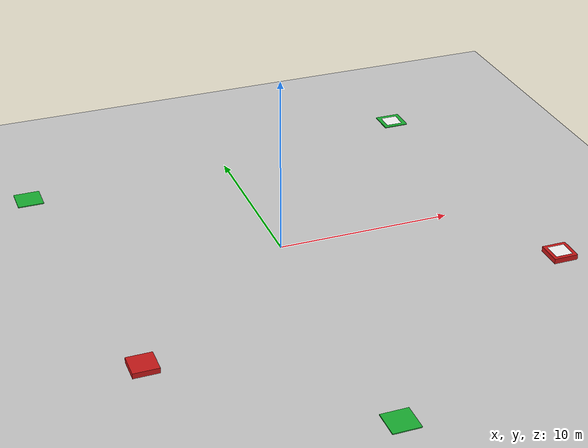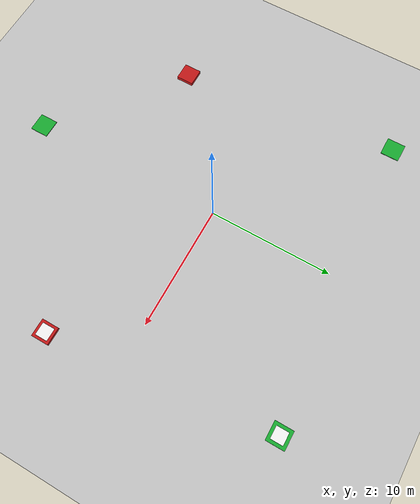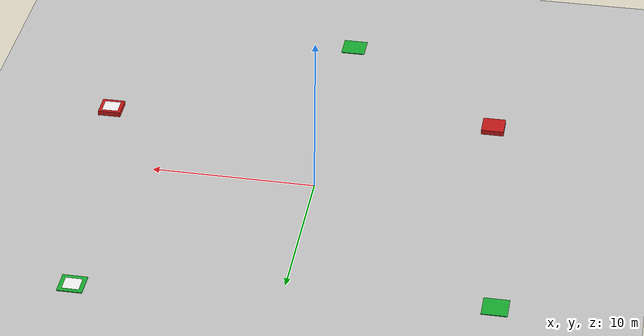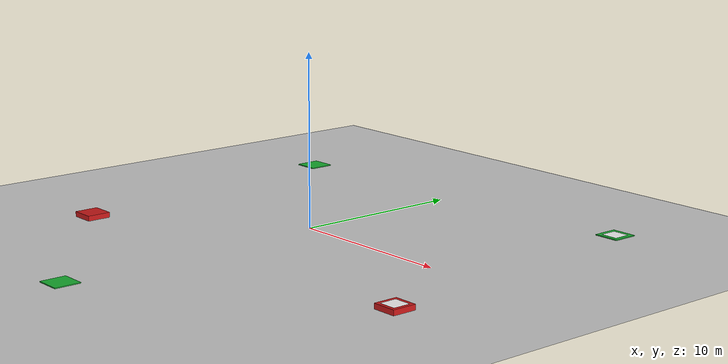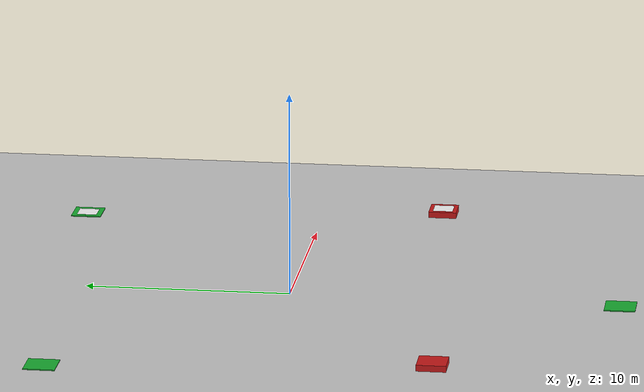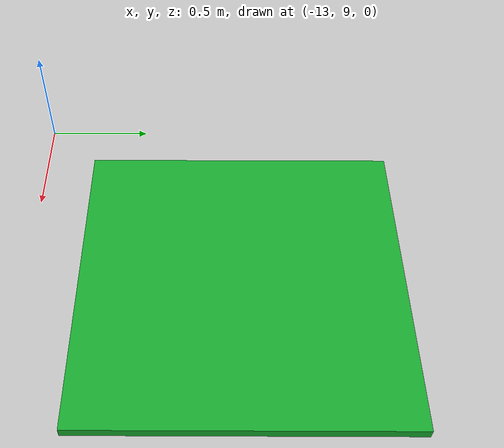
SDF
<sdf version="1.9">
 <world name="fire_site">
  <physics type="ode">
   <max_step_size>0.004</max_step_size>
   <real_time_factor>1.0</real_time_factor>
   <real_time_update_rate>250</real_time_update_rate>
  </physics>
  <gravity>0 0 -9.8</gravity>
  <magnetic_field>6e-06 2.3e-05 -4.2e-05</magnetic_field>
  <atmosphere type="adiabatic"/>
  <scene>
   <grid>false</grid>
   <ambient>0.4 0.4 0.4 1</ambient>
   <background>0.7 0.7 0.7 1</background>
   <shadows>true</shadows>
  </scene>
  <model name="ground_plane">
   <static>true</static>
   <link name="link">
    <collision name="collision">
     <geometry><plane><normal>0 0 1</normal><size>1 1</size></plane></geometry>
    </collision>
    <visual name="visual">
     <geometry><plane><normal>0 0 1</normal><size>500 500</size></plane></geometry>
     <material>
      <ambient>0.8 0.8 0.8 1</ambient>
      <diffuse>0.8 0.8 0.8 1</diffuse>
      <specular>0.8 0.8 0.8 1</specular>
     </material>
    </visual>
   </link>
  </model>
  <light name="sunUTC" type="directional">
   <pose>0 0 500 0 -0 0</pose>
   <intensity>1</intensity>
   <direction>0.001 0.625 -0.78</direction>
   <diffuse>0.904 0.904 0.904 1</diffuse>
   <specular>0.271 0.271 0.271 1</specular>
   <attenuation><range>2000</range><linear>0</linear><constant>1</constant><quadratic>0</quadratic></attenuation>
  </light>
  <spherical_coordinates>
   <surface_model>EARTH_WGS84</surface_model>
   <world_frame_orientation>ENU</world_frame_orientation>
   <latitude_deg>47.397971057728974</latitude_deg>
   <longitude_deg>8.546163739800146</longitude_deg>
   <elevation>0</elevation>
  </spherical_coordinates>
  <model name="fire_box_1">
   <static>true</static>
   <pose>14 -6 0.150 0 0 0</pose>
   <link name="link">
    <collision name="collision"><geometry><box><size>1.4 1.4 0.3</size></box></geometry></collision>
    <visual name="visual">
     <geometry><box><size>1.4 1.4 0.3</size></box></geometry>
     <material>
      <ambient>0.8 0.1 0.1 1</ambient>
      <diffuse>0.8 0.1 0.1 1</diffuse>
      <specular>0.1 0.1 0.1 1</specular>
     </material>
    </visual>
   </link>
  </model>
  <include><uri>model://tag36h11_101</uri><name>fire_tag_101</name><pose>14 -6 0.302 0 0 0</pose></include>
  <model name="decoy_box_7">
   <static>true</static>
   <pose>-10 -8 0.150 0 0 0</pose>
   <link name="link">
    <collision name="collision"><geometry><box><size>1.4 1.4 0.3</size></box></geometry></collision>
    <visual name="visual">
     <geometry><box><size>1.4 1.4 0.3</size></box></geometry>
     <material>
      <ambient>0.8 0.1 0.1 1</ambient>
      <diffuse>0.8 0.1 0.1 1</diffuse>
      <specular>0.1 0.1 0.1 1</specular>
     </material>
    </visual>
   </link>
  </model>
  <model name="patrol_pad_1">
   <static>true</static>
   <pose>12 12 0.025 0 0 0</pose>
   <link name="link">
    <collision name="collision"><geometry><box><size>1.5 1.5 0.05</size></box></geometry></collision>
    <visual name="visual">
     <geometry><box><size>1.5 1.5 0.05</size></box></geometry>
     <material>
      <ambient>0.1 0.7 0.2 1</ambient>
      <diffuse>0.1 0.7 0.2 1</diffuse>
      <specular>0.1 0.1 0.1 1</specular>
     </material>
    </visual>
   </link>
  </model>
  <model name="patrol_pad_2">
   <static>true</static>
   <pose>-12 10 0.025 0 0 0</pose>
   <link name="link">
    <collision name="collision"><geometry><box><size>1.5 1.5 0.05</size></box></geometry></collision>
    <visual name="visual">
     <geometry><box><size>1.5 1.5 0.05</size></box></geometry>
     <material>
      <ambient>0.1 0.7 0.2 1</ambient>
      <diffuse>0.1 0.7 0.2 1</diffuse>
      <specular>0.1 0.1 0.1 1</specular>
     </material>
    </visual>
   </link>
  </model>
  <model name="patrol_pad_3">
   <static>true</static>
   <pose>0 -16 0.025 0 0 0</pose>
   <link name="link">
    <collision name="collision"><geometry><box><size>1.5 1.5 0.05</size></box></geometry></collision>
    <visual name="visual">
     <geometry><box><size>1.5 1.5 0.05</size></box></geometry>
     <material>
      <ambient>0.1 0.7 0.2 1</ambient>
      <diffuse>0.1 0.7 0.2 1</diffuse>
      <specular>0.1 0.1 0.1 1</specular>
     </material>
    </visual>
   </link>
  </model>
  <include><uri>model://tag36h11_0</uri><name>patrol_tag_0</name><pose>12 12 0.052 0 0 0</pose></include>
 </world>
</sdf>

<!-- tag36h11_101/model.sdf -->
<!-- AprilTag tag36h11 編號 101。貼圖 10×10 格（外圍 1 格白邊），平面 1.0 m → 黑框邊長 0.8 m（偵測的 tag_size） -->
<sdf version="1.9">
  <model name="tag36h11_101">
    <static>true</static>
    <link name="link">
      <visual name="tag">
        <geometry>
          <plane>
            <normal>0 0 1</normal>
            <size>1.0 1.0</size>
          </plane>
        </geometry>
        <material>
          <ambient>1 1 1 1</ambient>
          <diffuse>1 1 1 1</diffuse>
          <specular>0.1 0.1 0.1 1</specular>
          <pbr>
            <metal>
              <albedo_map>model://tag36h11_101/materials/textures/tag36h11_101.png</albedo_map>
              <roughness>1.0</roughness>
              <metalness>0.0</metalness>
            </metal>
          </pbr>
        </material>
      </visual>
    </link>
  </model>
</sdf>

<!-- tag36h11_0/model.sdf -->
<!-- AprilTag tag36h11 編號 0。貼圖 10×10 格（外圍 1 格白邊），平面 1.0 m → 黑框邊長 0.8 m（偵測的 tag_size） -->
<sdf version="1.9">
  <model name="tag36h11_0">
    <static>true</static>
    <link name="link">
      <visual name="tag">
        <geometry>
          <plane>
            <normal>0 0 1</normal>
            <size>1.0 1.0</size>
          </plane>
        </geometry>
        <material>
          <ambient>1 1 1 1</ambient>
          <diffuse>1 1 1 1</diffuse>
          <specular>0.1 0.1 0.1 1</specular>
          <pbr>
            <metal>
              <albedo_map>model://tag36h11_0/materials/textures/tag36h11_0.png</albedo_map>
              <roughness>1.0</roughness>
              <metalness>0.0</metalness>
            </metal>
          </pbr>
        </material>
      </visual>
    </link>
  </model>
</sdf>
